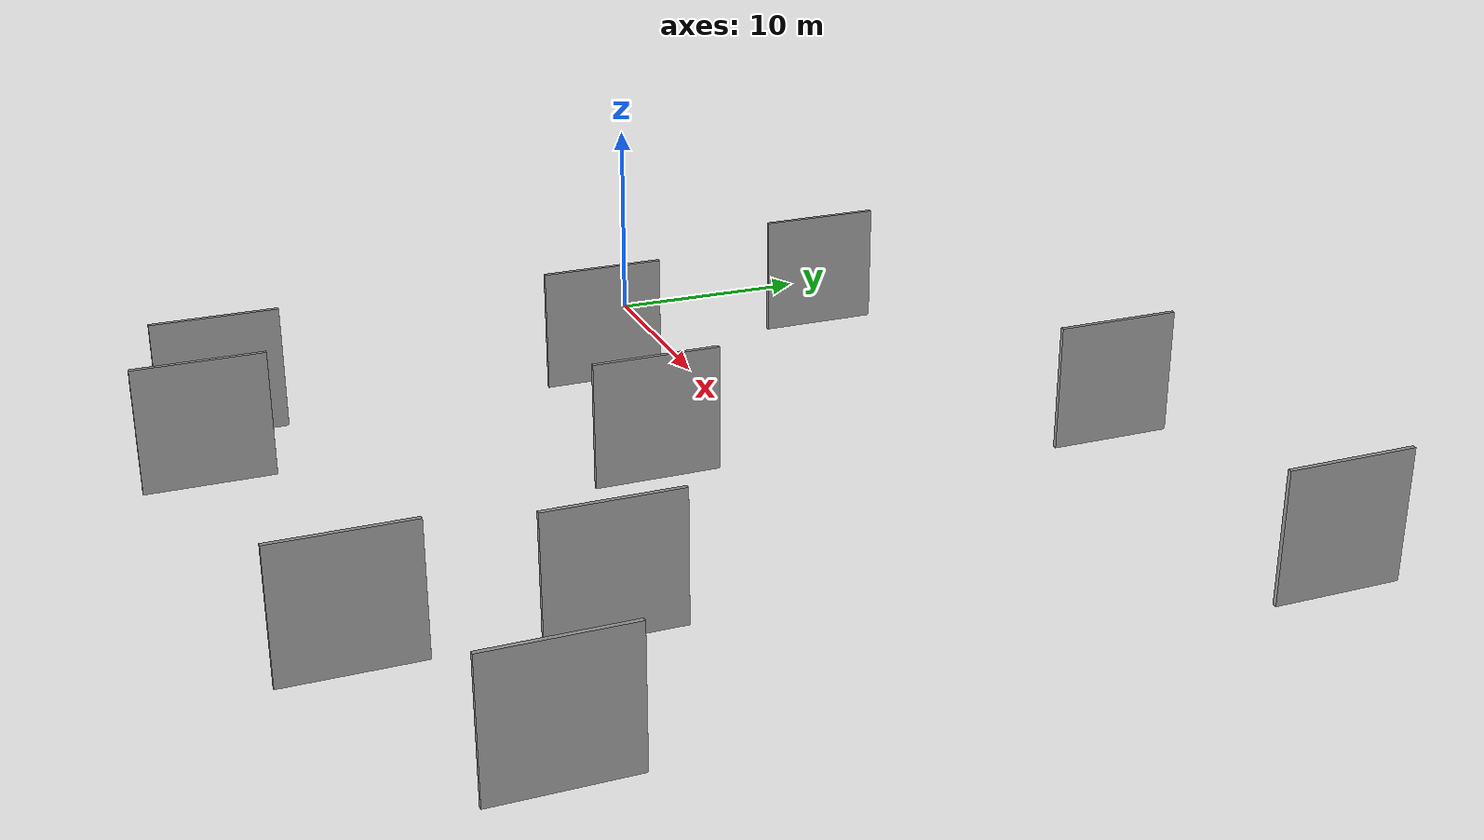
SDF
<sdf version="1.6">
 <world name="default">
  <scene>
   <sky><clouds><speed>12</speed></clouds></sky>
   <ambient>0.4 0.4 0.4 1</ambient>
   <background>0.7 0.7 0.7 1</background>
   <shadows>1</shadows>
  </scene>
  <gravity>0 0 -9.8066</gravity>
  <magnetic_field>6e-06 2.3e-05 -4.2e-05</magnetic_field>
  <physics default="0" name="default_physics" type="ode">
   <ode>
    <solver>
     <type>quick</type>
     <iters>10</iters>
     <sor>1.0</sor>
     <use_dynamic_moi_rescaling>0</use_dynamic_moi_rescaling>
    </solver>
    <constraints>
     <cfm>0</cfm>
     <erp>0.2</erp>
     <contact_max_correcting_vel>100</contact_max_correcting_vel>
     <contact_surface_layer>0.001</contact_surface_layer>
    </constraints>
   </ode>
   <max_step_size>0.004</max_step_size>
   <real_time_factor>1</real_time_factor>
   <real_time_update_rate>250</real_time_update_rate>
  </physics>
  <light name="sun" type="directional">
   <pose>0 0 10 0 0 0</pose>
   <diffuse>0.8 0.8 0.8 1</diffuse>
   <specular>0.2 0.2 0.2 1</specular>
   <attenuation>
    <range>1000</range>
    <constant>0.9</constant>
    <linear>0.01</linear>
    <quadratic>0.001</quadratic>
   </attenuation>
   <direction>-0.5 0.1 -0.9</direction>
  </light>
  <model name="grey_wall_1">
   <static>1</static>
   <pose>34.8912 -12.3880 0.0 0.000000 0.000000 1.570796</pose>
   <link name="link">
    <pose>0 0 3.00 0 0 0</pose>
    <collision name="collision"><geometry><box><size>6.00 0.2 6.00</size></box></geometry></collision>
    <visual name="visual">
     <cast_shadows>0</cast_shadows>
     <geometry><box><size>6.00 0.2 6.00</size></box></geometry>
     <material>
      <script>
       <uri>model://grey_wall/materials/scripts</uri>
       <uri>model://grey_wall/materials/textures</uri>
       <name>vrc/grey_wall</name>
      </script>
     </material>
    </visual>
   </link>
  </model>
  <model name="grey_wall_2">
   <static>1</static>
   <pose>33.7054 -22.5057 0.0 0.000000 0.000000 1.570796</pose>
   <link name="link">
    <pose>0 0 3.00 0 0 0</pose>
    <collision name="collision"><geometry><box><size>6.00 0.2 6.00</size></box></geometry></collision>
    <visual name="visual">
     <cast_shadows>0</cast_shadows>
     <geometry><box><size>6.00 0.2 6.00</size></box></geometry>
     <material>
      <script>
       <uri>model://grey_wall/materials/scripts</uri>
       <uri>model://grey_wall/materials/textures</uri>
       <name>vrc/grey_wall</name>
      </script>
     </material>
    </visual>
   </link>
  </model>
  <model name="grey_wall_3">
   <static>1</static>
   <pose>42.3012 15.9415 0.0 0.000000 0.000000 1.570796</pose>
   <link name="link">
    <pose>0 0 3.00 0 0 0</pose>
    <collision name="collision"><geometry><box><size>6.00 0.2 6.00</size></box></geometry></collision>
    <visual name="visual">
     <cast_shadows>0</cast_shadows>
     <geometry><box><size>6.00 0.2 6.00</size></box></geometry>
     <material>
      <script>
       <uri>model://grey_wall/materials/scripts</uri>
       <uri>model://grey_wall/materials/textures</uri>
       <name>vrc/grey_wall</name>
      </script>
     </material>
    </visual>
   </link>
  </model>
  <model name="grey_wall_4">
   <static>1</static>
   <pose>9.5280 -4.4191 0.0 0.000000 0.000000 1.570796</pose>
   <link name="link">
    <pose>0 0 3.00 0 0 0</pose>
    <collision name="collision"><geometry><box><size>6.00 0.2 6.00</size></box></geometry></collision>
    <visual name="visual">
     <cast_shadows>0</cast_shadows>
     <geometry><box><size>6.00 0.2 6.00</size></box></geometry>
     <material>
      <script>
       <uri>model://grey_wall/materials/scripts</uri>
       <uri>model://grey_wall/materials/textures</uri>
       <name>vrc/grey_wall</name>
      </script>
     </material>
    </visual>
   </link>
  </model>
  <model name="grey_wall_5">
   <static>1</static>
   <pose>44.0583 -17.3887 0.0 0.000000 0.000000 1.570796</pose>
   <link name="link">
    <pose>0 0 3.00 0 0 0</pose>
    <collision name="collision"><geometry><box><size>6.00 0.2 6.00</size></box></geometry></collision>
    <visual name="visual">
     <cast_shadows>0</cast_shadows>
     <geometry><box><size>6.00 0.2 6.00</size></box></geometry>
     <material>
      <script>
       <uri>model://grey_wall/materials/scripts</uri>
       <uri>model://grey_wall/materials/textures</uri>
       <name>vrc/grey_wall</name>
      </script>
     </material>
    </visual>
   </link>
  </model>
  <model name="grey_wall_6">
   <static>1</static>
   <pose>14.7569 -24.9888 0.0 0.000000 0.000000 1.570796</pose>
   <link name="link">
    <pose>0 0 3.00 0 0 0</pose>
    <collision name="collision"><geometry><box><size>6.00 0.2 6.00</size></box></geometry></collision>
    <visual name="visual">
     <cast_shadows>0</cast_shadows>
     <geometry><box><size>6.00 0.2 6.00</size></box></geometry>
     <material>
      <script>
       <uri>model://grey_wall/materials/scripts</uri>
       <uri>model://grey_wall/materials/textures</uri>
       <name>vrc/grey_wall</name>
      </script>
     </material>
    </visual>
   </link>
  </model>
  <model name="grey_wall_7">
   <static>1</static>
   <pose>9.3825 -23.4904 0.0 0.000000 0.000000 1.570796</pose>
   <link name="link">
    <pose>0 0 3.00 0 0 0</pose>
    <collision name="collision"><geometry><box><size>6.00 0.2 6.00</size></box></geometry></collision>
    <visual name="visual">
     <cast_shadows>0</cast_shadows>
     <geometry><box><size>6.00 0.2 6.00</size></box></geometry>
     <material>
      <script>
       <uri>model://grey_wall/materials/scripts</uri>
       <uri>model://grey_wall/materials/textures</uri>
       <name>vrc/grey_wall</name>
      </script>
     </material>
    </visual>
   </link>
  </model>
  <model name="grey_wall_8">
   <static>1</static>
   <pose>25.5383 15.5774 0.0 0.000000 0.000000 1.570796</pose>
   <link name="link">
    <pose>0 0 3.00 0 0 0</pose>
    <collision name="collision"><geometry><box><size>6.00 0.2 6.00</size></box></geometry></collision>
    <visual name="visual">
     <cast_shadows>0</cast_shadows>
     <geometry><box><size>6.00 0.2 6.00</size></box></geometry>
     <material>
      <script>
       <uri>model://grey_wall/materials/scripts</uri>
       <uri>model://grey_wall/materials/textures</uri>
       <name>vrc/grey_wall</name>
      </script>
     </material>
    </visual>
   </link>
  </model>
  <model name="grey_wall_9">
   <static>1</static>
   <pose>6.0742 9.0353 0.0 0.000000 0.000000 1.570796</pose>
   <link name="link">
    <pose>0 0 3.00 0 0 0</pose>
    <collision name="collision"><geometry><box><size>6.00 0.2 6.00</size></box></geometry></collision>
    <visual name="visual">
     <cast_shadows>0</cast_shadows>
     <geometry><box><size>6.00 0.2 6.00</size></box></geometry>
     <material>
      <script>
       <uri>model://grey_wall/materials/scripts</uri>
       <uri>model://grey_wall/materials/textures</uri>
       <name>vrc/grey_wall</name>
      </script>
     </material>
    </visual>
   </link>
  </model>
  <model name="grey_wall_10">
   <static>1</static>
   <pose>21.6993 -5.9257 0.0 0.000000 0.000000 1.570796</pose>
   <link name="link">
    <pose>0 0 3.00 0 0 0</pose>
    <collision name="collision"><geometry><box><size>6.00 0.2 6.00</size></box></geometry></collision>
    <visual name="visual">
     <cast_shadows>0</cast_shadows>
     <geometry><box><size>6.00 0.2 6.00</size></box></geometry>
     <material>
      <script>
       <uri>model://grey_wall/materials/scripts</uri>
       <uri>model://grey_wall/materials/textures</uri>
       <name>vrc/grey_wall</name>
      </script>
     </material>
    </visual>
   </link>
  </model>
 </world>
</sdf>
